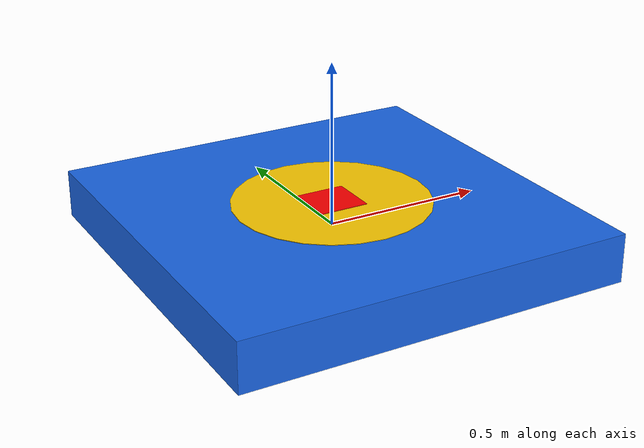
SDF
<?xml version="1.0"?>
<sdf version="1.6">
  <model name="landing_pad">
    <static>true</static>
    <link name="pad_link">
      <collision name="collision">
        <geometry>
          <box>
            <size>1.2 1.2 0.15</size>
          </box>
        </geometry>
      </collision>
      <visual name="visual_base">
        <geometry>
          <box>
            <size>1.2 1.2 0.15</size>
          </box>
        </geometry>
        <material>
          <ambient>0.1 0.3 0.8 1.0</ambient>
          <diffuse>0.1 0.4 0.9 1.0</diffuse>
          <specular>0.2 0.2 0.2 1.0</specular>
        </material>
      </visual>
      <visual name="visual_center_circle">
        <pose>0 0 0.076 0 0 0</pose>
        <geometry>
          <cylinder>
            <radius>0.3</radius>
            <length>0.002</length>
          </cylinder>
        </geometry>
        <material>
          <ambient>1.0 0.8 0.0 1.0</ambient>
          <diffuse>1.0 0.8 0.0 1.0</diffuse>
        </material>
      </visual>
      <visual name="visual_inner_marker">
        <pose>0 0 0.078 0 0 0</pose>
        <geometry>
          <box>
            <size>0.15 0.15 0.002</size>
          </box>
        </geometry>
        <material>
          <ambient>1.0 0.0 0.0 1.0</ambient>
          <diffuse>1.0 0.0 0.0 1.0</diffuse>
        </material>
      </visual>
    </link>
  </model>
</sdf>
